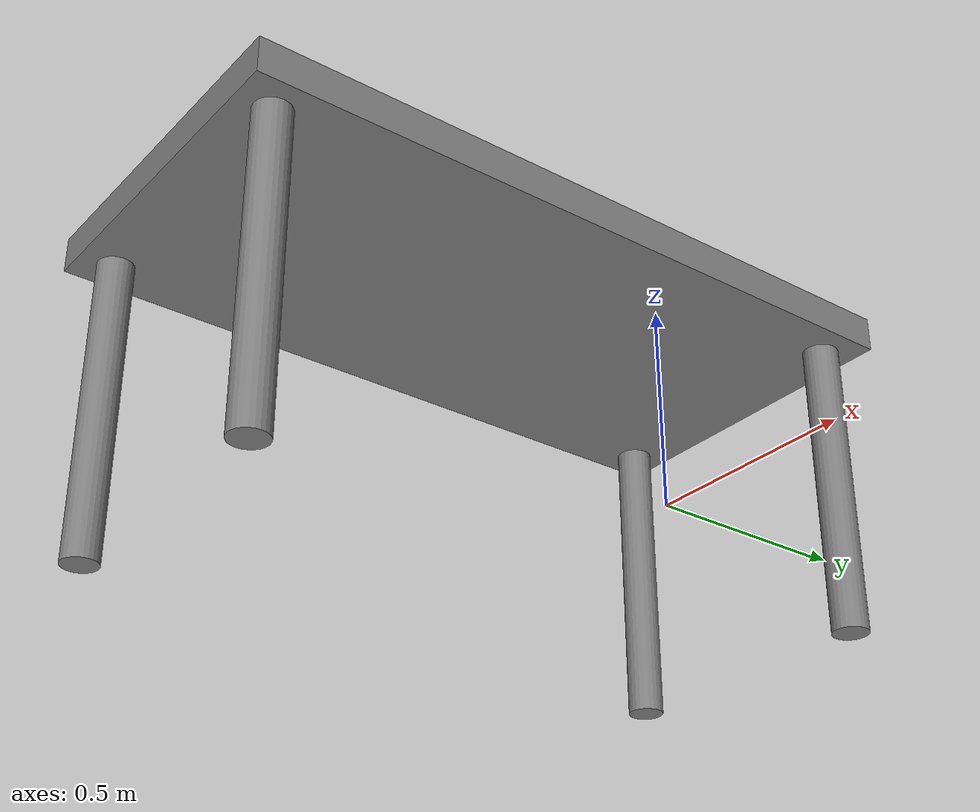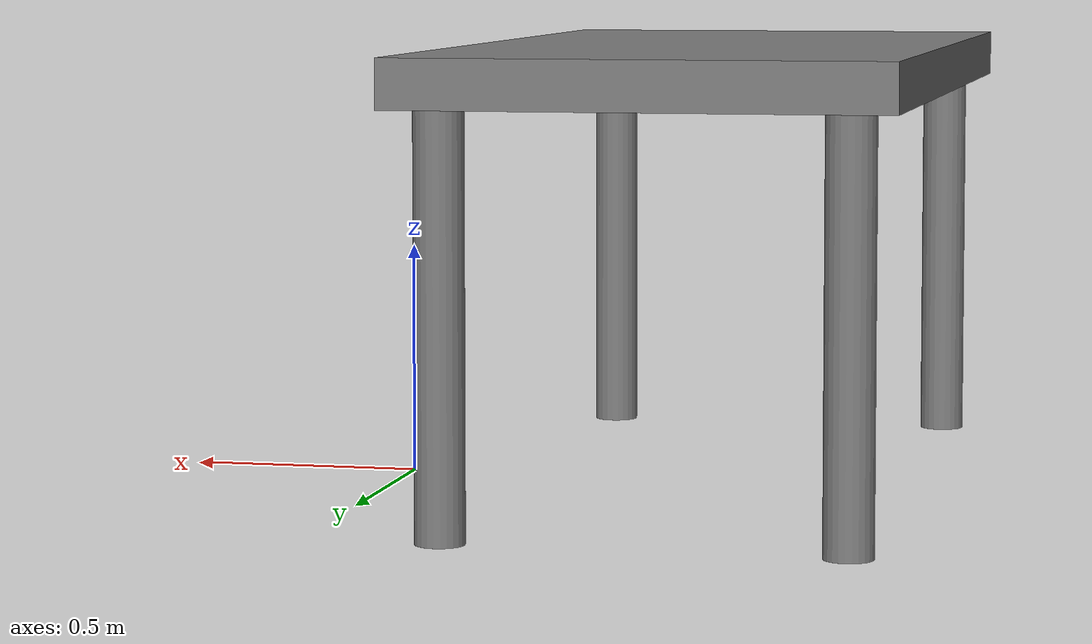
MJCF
<!-- SPDX-FileCopyrightText: 2023 Humanoid Sensing and Perception, Istituto Italiano di Tecnologia -->
<!-- SPDX-License-Identifier: BSD-3-Clause -->

<mujoco model="table">
    <compiler angle="radian" inertiafromgeom="auto" convexhull="true" texturedir="../meshes/table"/>
    <size njmax="1000" nconmax="10000" />
    <option timestep="0.005" gravity="0 0 -9.81" cone="pyramidal"/>

    <asset>
        <texture name="texwood" file="wood_small.png" type="2d"/>
        <material name="matwood" texture="texwood"/>
    </asset>

    <worldbody>
        <body name="table" pos="-0.68 0 0.9">
            <body name="wood" pos="0 0 0">
                <geom pos="0 0 0" size="0.5 1.0 0.05" type="box" name="table_collision"/>
                <geom pos="0 0 0" material="matwood" size="0.5 1.0 0.05" type="box" contype="0" conaffinity="0" group="1" rgba="1 1 1 1" name="table_visual"/>
            </body>
            <body name="table_leg_1" pos="-0.4 -0.9 -0.45">
                <geom pos="0 0 0" size="0.05 0.45" type="cylinder" name="table_leg_1_collision"/>
                <geom pos="0 0 0" size="0.05 0.45" type="cylinder" contype="0" conaffinity="0" group="1" rgba="1 1 1 1" name="table_leg_1_visual"/>
            </body>
            <body name="table_leg_2" pos="0.4 -0.9 -0.45">
                <geom pos="0 0 0" size="0.05 0.45" type="cylinder" name="table_leg_2_collision"/>
                <geom pos="0 0 0" size="0.05 0.45" type="cylinder" contype="0" conaffinity="0" group="1" rgba="1 1 1 1" name="table_leg_2_visual"/>
            </body>
            <body name="table_leg_3" pos="-0.4 0.9 -0.45">
                <geom pos="0 0 0" size="0.05 0.45" type="cylinder" name="table_leg_3_collision"/>
                <geom pos="0 0 0" size="0.05 0.45" type="cylinder" contype="0" conaffinity="0" group="1" rgba="1 1 1 1" name="table_leg_3_visual"/>
            </body>
            <body name="table_leg_4" pos="0.4 0.9 -0.45">
                <geom pos="0 0 0" size="0.05 0.45" type="cylinder" name="table_leg_4_collision"/>
                <geom pos="0 0 0" size="0.05 0.45" type="cylinder" contype="0" conaffinity="0" group="1" rgba="1 1 1 1" name="table_leg_4_visual"/>
            </body>
        </body>
    </worldbody>

</mujoco>
